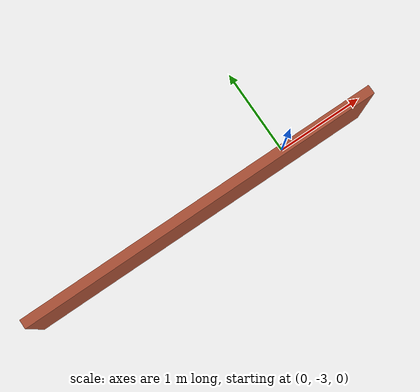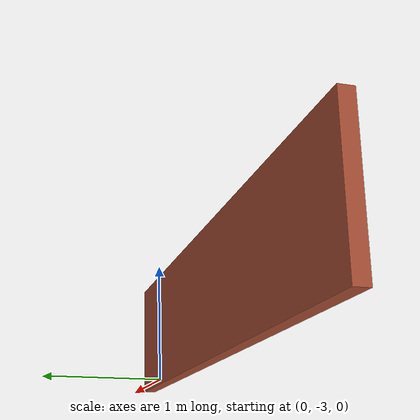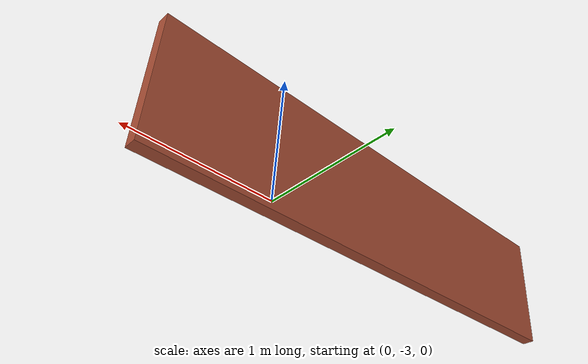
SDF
<?xml version='1.0'?>
<sdf version='1.6'>
  <model name='brick_wall'>
    <pose frame=''>-1.125 -3.12 0 0 -0 0</pose>
    <link name='Wall_2'>
      <collision name='Wall_2_Collision'>
                <pose frame=''>0 0 0.5 0 -0 0</pose>
<geometry>
          <box>
            <size>4 0.10 1.0</size>
          </box>
        </geometry>
      </collision>
      <visual name='Wall_2_Visual'>
        <pose frame=''>0 0 0.5 0 -0 0</pose>
        <geometry>
          <box>
            <size>4 0.10 1.0</size>
          </box>
        </geometry>
        <material>
          <script>
            <uri>file://media/materials/scripts/gazebo.material</uri>
            <name>Gazebo/Bricks</name>
          </script>
          <ambient>1 1 1 1</ambient>
        </material>
        <meta>
          <layer>0</layer>
        </meta>
      </visual>
      <pose frame=''>0 0 0 0 -0 0</pose>
    </link>
    <static>1</static>
  </model>
</sdf>
